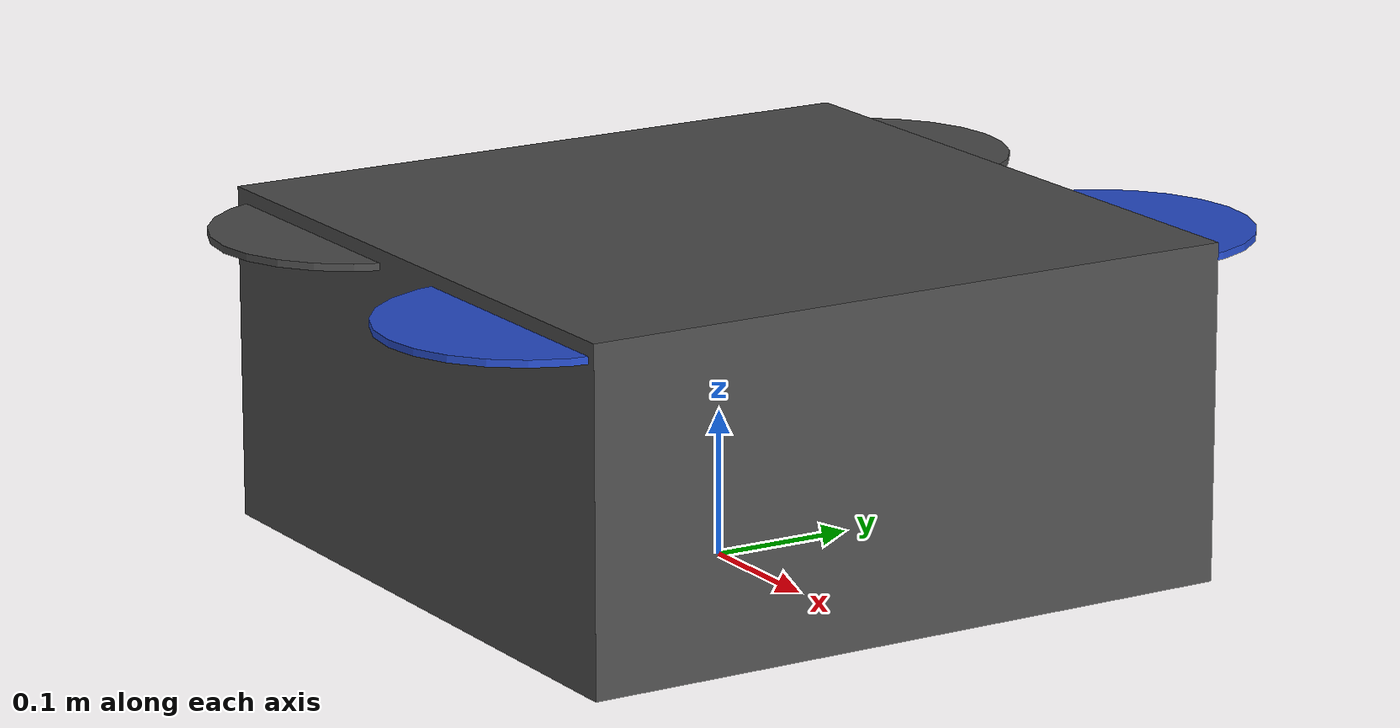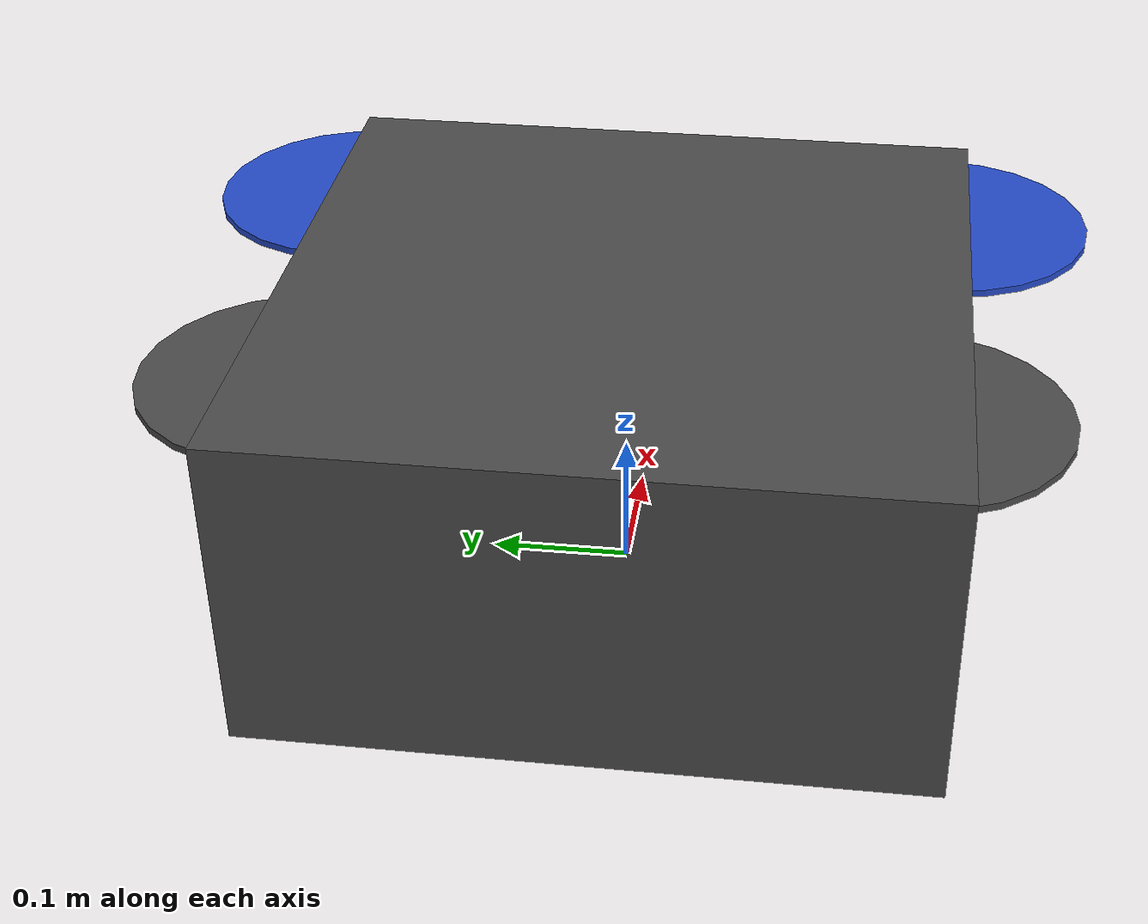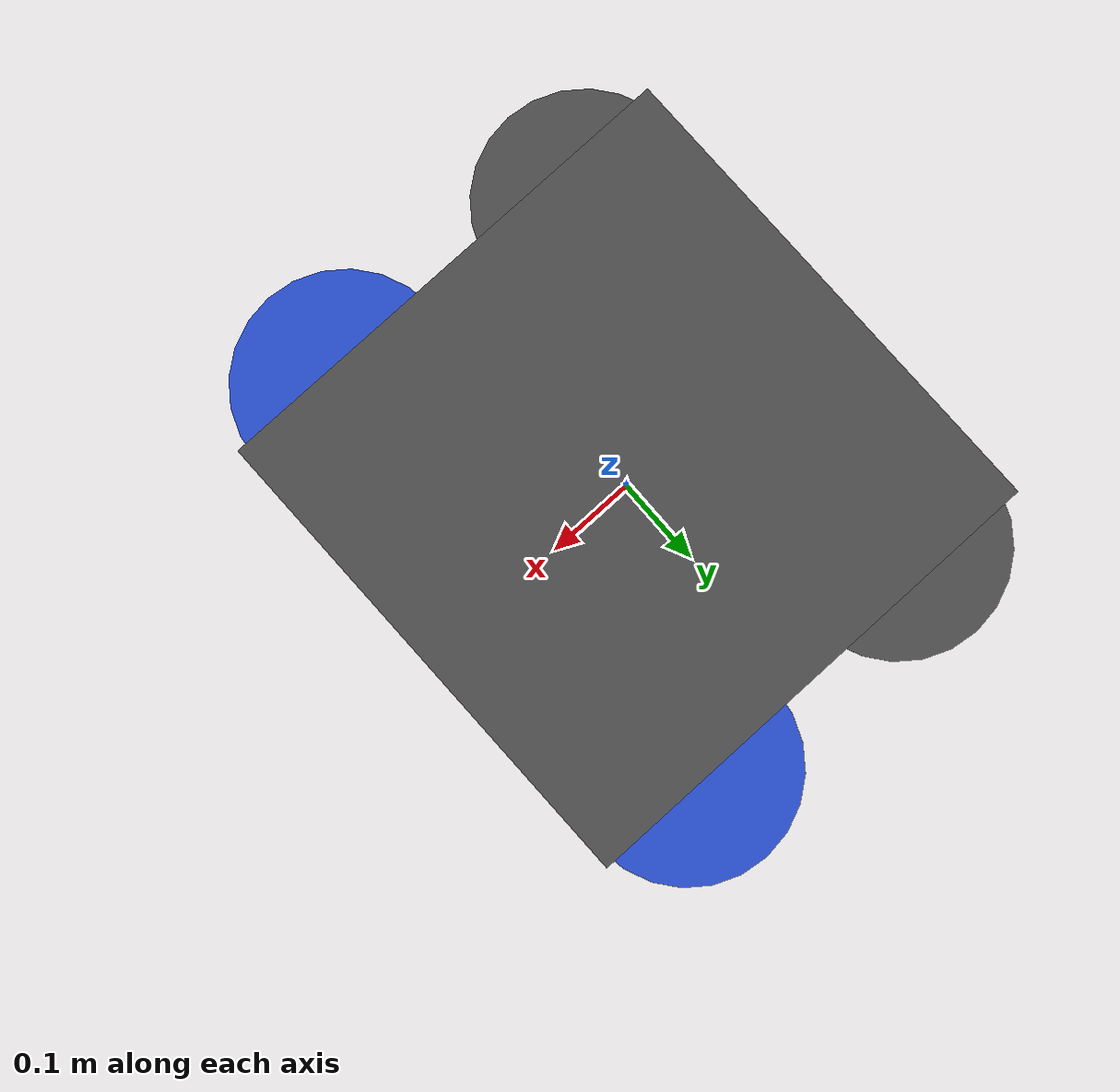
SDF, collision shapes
<?xml version='1.0'?>
<sdf version='1.6'>
  <model name='iris'>
    <pose>0 0 0.2 0 0 0</pose>
    <link name='base_link'>
      <velocity_decay>
        <linear>0.0</linear>
        <angular>0.0</angular>
      </velocity_decay>
      <inertial>
        <pose>0 0 0 0 0 0</pose>
        <mass>1.5</mass>
        <inertia>
          <ixx>0.008</ixx>
          <ixy>0</ixy>
          <ixz>0</ixz>
          <iyy>0.015</iyy>
          <iyz>0</iyz>
          <izz>0.017</izz>
        </inertia>
      </inertial>
      <collision name='base_link_collision'>
        <pose>0 0 -0.08 0 0 0</pose>
        <geometry>
          <box>
            <size>0.47 0.47 0.23</size>
          </box>
        </geometry>
        <surface>
          <contact>
            <ode>
              <max_vel>100.0</max_vel>
              <min_depth>0.001</min_depth>
            </ode>
          </contact>
          <friction>
            <ode>
              <mu>100000.0</mu>
              <mu2>100000.0</mu2>
            </ode>
          </friction>
        </surface>
      </collision>
      <visual name='base_link_visual'>
        <geometry>
          <mesh>
            <uri>model://iris_with_standoffs/meshes/iris.dae</uri>
          </mesh>
        </geometry>
        <material>
          <script>
            <name>Gazebo/DarkGrey</name>
          </script>
        </material>
      </visual>

      <visual name='front_left_leg_visual'>
        <pose>0.123 0.22 -0.11 0 0 0</pose>
        <geometry>
          <cylinder>
            <radius>0.005</radius>
            <length>0.17</length>
          </cylinder>
        </geometry>
        <material>
          <script>
            <name>Gazebo/FlatBlack</name>
            <uri>file://media/materials/scripts/gazebo.material</uri>
          </script>
        </material>
      </visual>
      <visual name='front_right_leg_visual'>
        <pose>0.123 -0.22 -0.11 0 0 0</pose>
        <geometry>
          <cylinder>
            <radius>0.005</radius>
            <length>0.17</length>
          </cylinder>
        </geometry>
        <material>
          <script>
            <name>Gazebo/FlatBlack</name>
            <uri>file://media/materials/scripts/gazebo.material</uri>
          </script>
        </material>
      </visual>
      <visual name='rear_left_leg_visual'>
        <pose>-0.140 0.21 -0.11 0 0 0</pose>
        <geometry>
          <cylinder>
            <radius>0.005</radius>
            <length>0.17</length>
          </cylinder>
        </geometry>
        <material>
          <script>
            <name>Gazebo/FlatBlack</name>
            <uri>file://media/materials/scripts/gazebo.material</uri>
          </script>
        </material>
      </visual>
      <visual name='rear_right_leg_visual'>
        <pose>-0.140 -0.21 -0.11 0 0 0</pose>
        <geometry>
          <cylinder>
            <radius>0.005</radius>
            <length>0.17</length>
          </cylinder>
        </geometry>
        <material>
          <script>
            <name>Gazebo/FlatBlack</name>
            <uri>file://media/materials/scripts/gazebo.material</uri>
          </script>
        </material>
      </visual>
    </link>
    <link name='iris/ground_truth/odometry_sensorgt_link'>
      <pose>0 0 0 0 -0 0</pose>
      <inertial>
        <pose>0 0 0 0 -0 0</pose>
        <mass>0.15</mass>
        <inertia>
          <ixx>0.0001</ixx>
          <ixy>0</ixy>
          <ixz>0</ixz>
          <iyy>0.0002</iyy>
          <iyz>0</iyz>
          <izz>0.0002</izz>
        </inertia>
      </inertial>
    </link>
    <joint name='iris/ground_truth/odometry_sensorgt_joint' type='revolute'>
      <child>iris/ground_truth/odometry_sensorgt_link</child>
      <parent>base_link</parent>
      <axis>
        <xyz>0 0 1</xyz>
        <limit>
          <lower>0</lower>
          <upper>0</upper>
          <effort>0</effort>
          <velocity>0</velocity>
        </limit>
        <dynamics>
          <damping>1.0</damping>
        </dynamics>
        <use_parent_model_frame>1</use_parent_model_frame>
      </axis>
      <physics>
        <ode>
          <implicit_spring_damper>1</implicit_spring_damper>
        </ode>
      </physics>
    </joint>
    <link name='iris/imu_link'>
      <inertial>
        <pose>0 0 0 0 0 0</pose>
        <mass>0.15</mass>
        <inertia>
          <ixx>0.00001</ixx>
          <ixy>0</ixy>
          <ixz>0</ixz>
          <iyy>0.00002</iyy>
          <iyz>0</iyz>
          <izz>0.00002</izz>
        </inertia>
      </inertial>
      <sensor name="imu_sensor" type="imu">
        <pose>0 0 0 3.141593 0 0</pose>
        <always_on>1</always_on>
        <update_rate>1000.0</update_rate>
      </sensor>
    </link>
    <joint name='iris/imu_joint' type='revolute'>
      <child>iris/imu_link</child>
      <parent>base_link</parent>
      <axis>
        <xyz>0 0 1</xyz>
        <limit>
          <lower>0</lower>
          <upper>0</upper>
          <effort>0</effort>
          <velocity>0</velocity>
        </limit>
        <dynamics>
          <damping>1.0</damping>
        </dynamics>
        <use_parent_model_frame>1</use_parent_model_frame>
      </axis>
      <physics>
        <ode>
          <implicit_spring_damper>1</implicit_spring_damper>
        </ode>
      </physics>
    </joint>
    <link name='rotor_0'>
      <pose>0.13 -0.22 0.023 0 -0 0</pose>
      <inertial>
        <pose>0 0 0 0 -0 0</pose>
        <mass>0.025</mass>
        <inertia>
          <ixx>9.75e-06</ixx>
          <ixy>0</ixy>
          <ixz>0</ixz>
          <iyy>0.000166704</iyy>
          <iyz>0</iyz>
          <izz>0.000167604</izz>
        </inertia>
      </inertial>
      <collision name='rotor_0_collision'>
        <pose>0 0 0 0 -0 0</pose>
        <geometry>
          <cylinder>
            <length>0.005</length>
            <radius>0.1</radius>
          </cylinder>
        </geometry>
        <surface>
          <contact>
            <ode/>
          </contact>
          <friction>
            <ode/>
          </friction>
        </surface>
      </collision>
      <visual name='rotor_0_visual'>
        <pose>0 0 0 0 -0 0</pose>
        <geometry>
          <mesh>
            <scale>1 1 1</scale>
            <uri>model://iris_with_standoffs/meshes/iris_prop_ccw.dae</uri>
          </mesh>
        </geometry>
        <material>
          <script>
            <name>Gazebo/Blue</name>
            <uri>__default__</uri>
          </script>
        </material>
      </visual>
      <gravity>1</gravity>
      <velocity_decay/>
      <self_collide>0</self_collide>
    </link>
    <joint name='rotor_0_joint' type='revolute'>
      <child>rotor_0</child>
      <parent>base_link</parent>
      <axis>
        <xyz>0 0 1</xyz>
        <limit>
          <lower>-1e+16</lower>
          <upper>1e+16</upper>
        </limit>
        <dynamics>
          <damping>0.004</damping>
        </dynamics>
        <use_parent_model_frame>1</use_parent_model_frame>
      </axis>
      <physics>
        <ode>
          <implicit_spring_damper>1</implicit_spring_damper>
        </ode>
      </physics>
    </joint>
    <link name='rotor_1'>
      <pose>-0.13 0.2 0.023 0 -0 0</pose>
      <inertial>
        <pose>0 0 0 0 -0 0</pose>
        <mass>0.025</mass>
        <inertia>
          <ixx>9.75e-06</ixx>
          <ixy>0</ixy>
          <ixz>0</ixz>
          <iyy>0.000166704</iyy>
          <iyz>0</iyz>
          <izz>0.000167604</izz>
        </inertia>
      </inertial>
      <collision name='rotor_1_collision'>
        <pose>0 0 0 0 -0 0</pose>
        <geometry>
          <cylinder>
            <length>0.005</length>
            <radius>0.1</radius>
          </cylinder>
        </geometry>
        <surface>
          <contact>
            <ode/>
          </contact>
          <friction>
            <ode/>
          </friction>
        </surface>
      </collision>
      <visual name='rotor_1_visual'>
        <pose>0 0 0 0 -0 0</pose>
        <geometry>
          <mesh>
            <scale>1 1 1</scale>
            <uri>model://iris_with_standoffs/meshes/iris_prop_ccw.dae</uri>
          </mesh>
        </geometry>
        <material>
          <script>
            <name>Gazebo/DarkGrey</name>
            <uri>__default__</uri>
          </script>
        </material>
      </visual>
      <gravity>1</gravity>
      <velocity_decay/>
      <self_collide>0</self_collide>
    </link>
    <joint name='rotor_1_joint' type='revolute'>
      <child>rotor_1</child>
      <parent>base_link</parent>
      <axis>
        <xyz>0 0 1</xyz>
        <limit>
          <lower>-1e+16</lower>
          <upper>1e+16</upper>
        </limit>
        <dynamics>
          <damping>0.004</damping>
        </dynamics>
        <use_parent_model_frame>1</use_parent_model_frame>
      </axis>
      <physics>
        <ode>
          <implicit_spring_damper>1</implicit_spring_damper>
        </ode>
      </physics>
    </joint>
    <link name='rotor_2'>
      <pose>0.13 0.22 0.023 0 -0 0</pose>
      <inertial>
        <pose>0 0 0 0 -0 0</pose>
        <mass>0.025</mass>
        <inertia>
          <ixx>9.75e-06</ixx>
          <ixy>0</ixy>
          <ixz>0</ixz>
          <iyy>0.000166704</iyy>
          <iyz>0</iyz>
          <izz>0.000167604</izz>
        </inertia>
      </inertial>
      <collision name='rotor_2_collision'>
        <pose>0 0 0 0 -0 0</pose>
        <geometry>
          <cylinder>
            <length>0.005</length>
            <radius>0.1</radius>
          </cylinder>
        </geometry>
        <surface>
          <contact>
            <ode/>
          </contact>
          <friction>
            <ode/>
          </friction>
        </surface>
      </collision>
      <visual name='rotor_2_visual'>
        <pose>0 0 0 0 -0 0</pose>
        <geometry>
          <mesh>
            <scale>1 1 1</scale>
            <uri>model://iris_with_standoffs/meshes/iris_prop_cw.dae</uri>
          </mesh>
        </geometry>
        <material>
          <script>
            <name>Gazebo/Blue</name>
            <uri>__default__</uri>
          </script>
        </material>
      </visual>
      <gravity>1</gravity>
      <velocity_decay/>
      <self_collide>0</self_collide>
    </link>
    <joint name='rotor_2_joint' type='revolute'>
      <child>rotor_2</child>
      <parent>base_link</parent>
      <axis>
        <xyz>0 0 1</xyz>
        <limit>
          <lower>-1e+16</lower>
          <upper>1e+16</upper>
        </limit>
        <dynamics>
          <damping>0.004</damping>
        </dynamics>
        <use_parent_model_frame>1</use_parent_model_frame>
      </axis>
      <physics>
        <ode>
          <implicit_spring_damper>1</implicit_spring_damper>
        </ode>
      </physics>
    </joint>
    <link name='rotor_3'>
      <pose>-0.13 -0.2 0.023 0 -0 0</pose>
      <inertial>
        <pose>0 0 0 0 -0 0</pose>
        <mass>0.025</mass>
        <inertia>
          <ixx>9.75e-06</ixx>
          <ixy>0</ixy>
          <ixz>0</ixz>
          <iyy>0.000166704</iyy>
          <iyz>0</iyz>
          <izz>0.000167604</izz>
        </inertia>
      </inertial>
      <collision name='rotor_3_collision'>
        <pose>0 0 0 0 -0 0</pose>
        <geometry>
          <cylinder>
            <length>0.005</length>
            <radius>0.1</radius>
          </cylinder>
        </geometry>
        <surface>
          <contact>
            <ode/>
          </contact>
          <friction>
            <ode/>
          </friction>
        </surface>
      </collision>
      <visual name='rotor_3_visual'>
        <pose>0 0 0 0 -0 0</pose>
        <geometry>
          <mesh>
            <scale>1 1 1</scale>
            <uri>model://iris_with_standoffs/meshes/iris_prop_cw.dae</uri>
          </mesh>
        </geometry>
        <material>
          <script>
            <name>Gazebo/DarkGrey</name>
            <uri>__default__</uri>
          </script>
        </material>
      </visual>
      <gravity>1</gravity>
      <velocity_decay/>
      <self_collide>0</self_collide>
    </link>
    <joint name='rotor_3_joint' type='revolute'>
      <child>rotor_3</child>
      <parent>base_link</parent>
      <axis>
        <xyz>0 0 1</xyz>
        <limit>
          <lower>-1e+16</lower>
          <upper>1e+16</upper>
        </limit>
        <dynamics>
          <damping>0.004</damping>
        </dynamics>
        <use_parent_model_frame>1</use_parent_model_frame>
      </axis>
      <physics>
        <ode>
          <implicit_spring_damper>1</implicit_spring_damper>
        </ode>
      </physics>
    </joint>
    <static>0</static>

   <!-- plugins -->
    <plugin name="rotor_0_blade_1" filename="libLiftDragPlugin.so">
      <a0>0.3</a0>
      <alpha_stall>1.4</alpha_stall>
      <cla>4.2500</cla>
      <cda>0.10</cda>
      <cma>0.00</cma>
      <cla_stall>-0.025</cla_stall>
      <cda_stall>0.0</cda_stall>
      <cma_stall>0.0</cma_stall>
      <area>0.002</area>
      <air_density>1.2041</air_density>
      <cp>0.084 0 0</cp>
      <forward>0 1 0</forward>
      <upward>0 0 1</upward>
      <link_name>iris::rotor_0</link_name>
    </plugin>
    <plugin name="rotor_0_blade_2" filename="libLiftDragPlugin.so">
      <a0>0.3</a0>
      <alpha_stall>1.4</alpha_stall>
      <cla>4.2500</cla>
      <cda>0.10</cda>
      <cma>0.00</cma>
      <cla_stall>-0.025</cla_stall>
      <cda_stall>0.0</cda_stall>
      <cma_stall>0.0</cma_stall>
      <area>0.002</area>
      <air_density>1.2041</air_density>
      <cp>-0.084 0 0</cp>
      <forward>0 -1 0</forward>
      <upward>0 0 1</upward>
      <link_name>iris::rotor_0</link_name>
    </plugin>

    <plugin name="rotor_1_blade_1" filename="libLiftDragPlugin.so">
      <a0>0.3</a0>
      <alpha_stall>1.4</alpha_stall>
      <cla>4.2500</cla>
      <cda>0.10</cda>
      <cma>0.00</cma>
      <cla_stall>-0.025</cla_stall>
      <cda_stall>0.0</cda_stall>
      <cma_stall>0.0</cma_stall>
      <area>0.002</area>
      <air_density>1.2041</air_density>
      <cp>0.084 0 0</cp>
      <forward>0 1 0</forward>
      <upward>0 0 1</upward>
      <link_name>iris::rotor_1</link_name>
    </plugin>
    <plugin name="rotor_1_blade_2" filename="libLiftDragPlugin.so">
      <a0>0.3</a0>
      <alpha_stall>1.4</alpha_stall>
      <cla>4.2500</cla>
      <cda>0.10</cda>
      <cma>0.00</cma>
      <cla_stall>-0.025</cla_stall>
      <cda_stall>0.0</cda_stall>
      <cma_stall>0.0</cma_stall>
      <area>0.002</area>
      <air_density>1.2041</air_density>
      <cp>-0.084 0 0</cp>
      <forward>0 -1 0</forward>
      <upward>0 0 1</upward>
      <link_name>iris::rotor_1</link_name>
    </plugin>

    <plugin name="rotor_2_blade_1" filename="libLiftDragPlugin.so">
      <a0>0.3</a0>
      <alpha_stall>1.4</alpha_stall>
      <cla>4.2500</cla>
      <cda>0.10</cda>
      <cma>0.00</cma>
      <cla_stall>-0.025</cla_stall>
      <cda_stall>0.0</cda_stall>
      <cma_stall>0.0</cma_stall>
      <area>0.002</area>
      <air_density>1.2041</air_density>
      <cp>0.084 0 0</cp>
      <forward>0 -1 0</forward>
      <upward>0 0 1</upward>
      <link_name>iris::rotor_2</link_name>
    </plugin>
    <plugin name="rotor_2_blade_2" filename="libLiftDragPlugin.so">
      <a0>0.3</a0>
      <alpha_stall>1.4</alpha_stall>
      <cla>4.2500</cla>
      <cda>0.10</cda>
      <cma>0.00</cma>
      <cla_stall>-0.025</cla_stall>
      <cda_stall>0.0</cda_stall>
      <cma_stall>0.0</cma_stall>
      <area>0.002</area>
      <air_density>1.2041</air_density>
      <cp>-0.084 0 0</cp>
      <forward>0 1 0</forward>
      <upward>0 0 1</upward>
      <link_name>iris::rotor_2</link_name>
    </plugin>

    <plugin name="rotor_3_blade_1" filename="libLiftDragPlugin.so">
      <a0>0.3</a0>
      <alpha_stall>1.4</alpha_stall>
      <cla>4.2500</cla>
      <cda>0.10</cda>
      <cma>0.00</cma>
      <cla_stall>-0.025</cla_stall>
      <cda_stall>0.0</cda_stall>
      <cma_stall>0.0</cma_stall>
      <area>0.002</area>
      <air_density>1.2041</air_density>
      <cp>0.084 0 0</cp>
      <forward>0 -1 0</forward>
      <upward>0 0 1</upward>
      <link_name>iris::rotor_3</link_name>
    </plugin>
    <plugin name="rotor_3_blade_2" filename="libLiftDragPlugin.so">
      <a0>0.3</a0>
      <alpha_stall>1.4</alpha_stall>
      <cla>4.2500</cla>
      <cda>0.10</cda>
      <cma>0.00</cma>
      <cla_stall>-0.025</cla_stall>
      <cda_stall>0.0</cda_stall>
      <cma_stall>0.0</cma_stall>
      <area>0.002</area>
      <air_density>1.2041</air_density>
      <cp>-0.084 0 0</cp>
      <forward>0 1 0</forward>
      <upward>0 0 1</upward>
      <link_name>iris::rotor_3</link_name>
    </plugin>
  </model>
</sdf>
